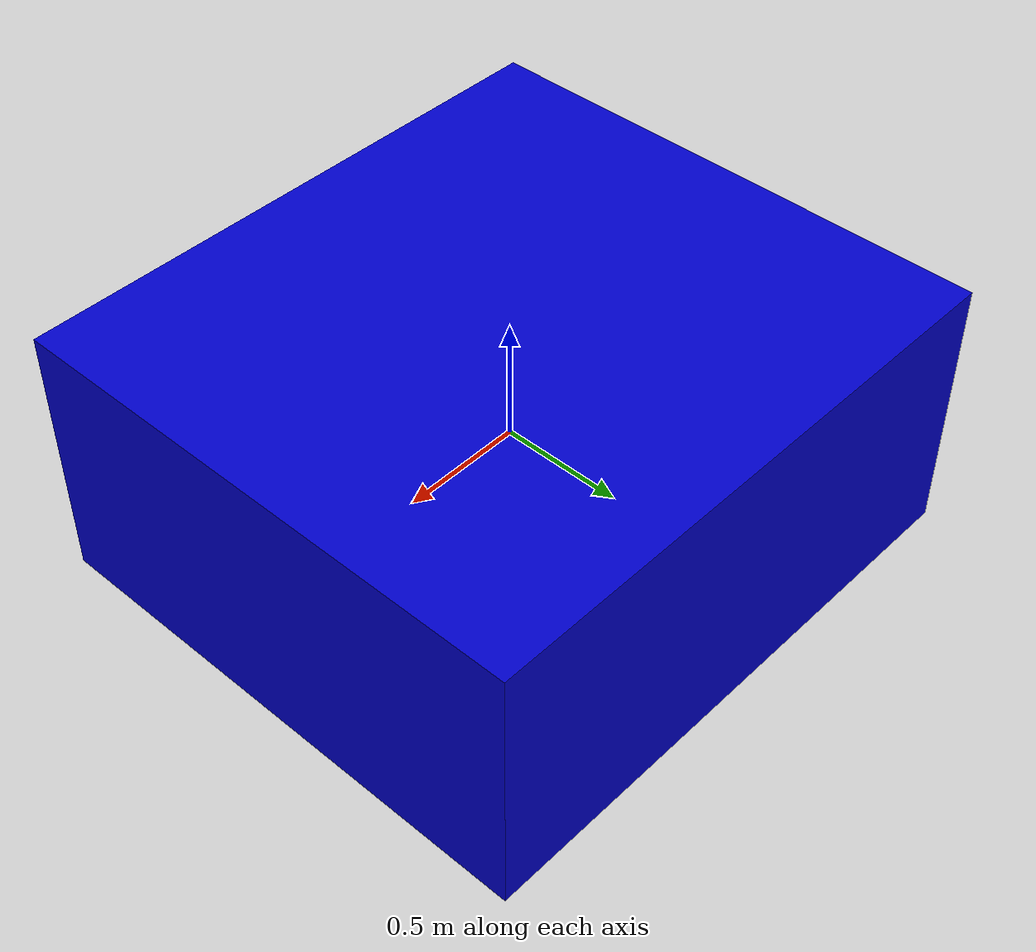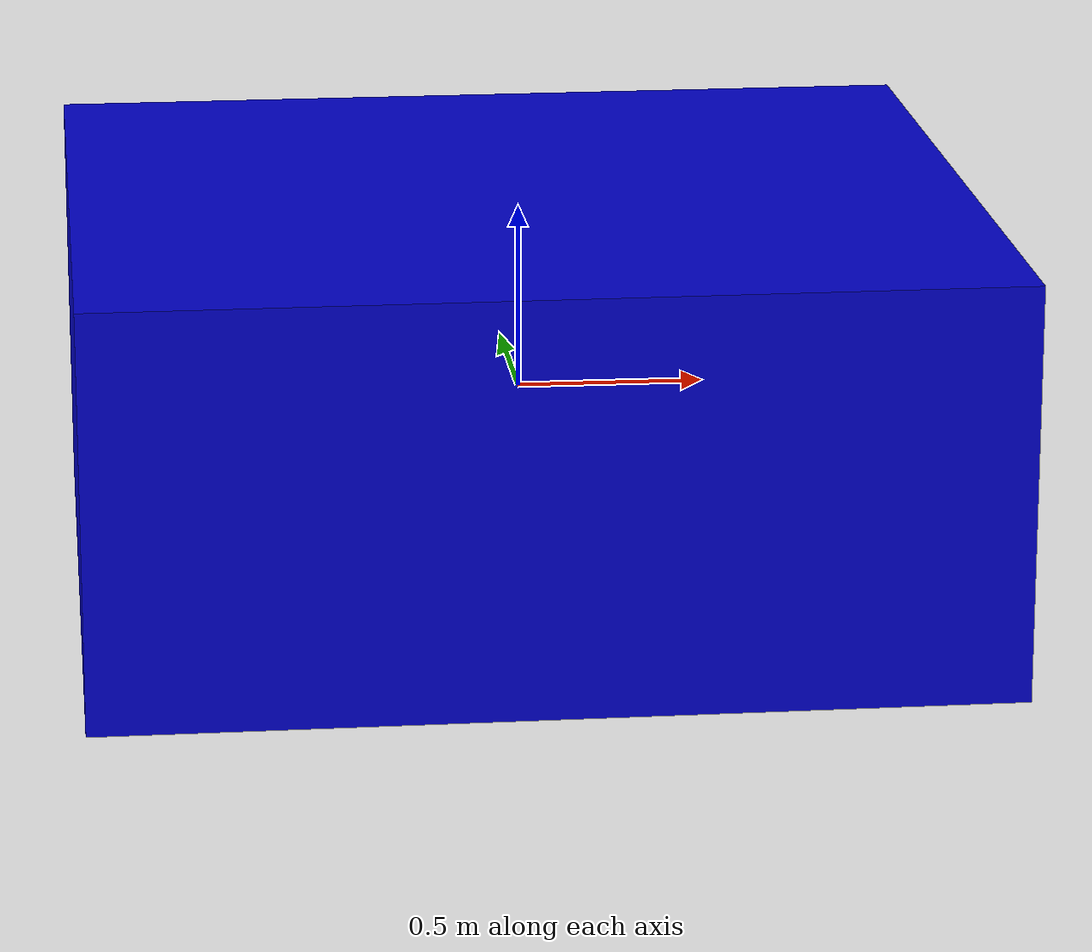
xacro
<?xml version="1.0"?>
<robot xmlns:xacro="http://www.ros.org/wiki/xacro" name="zaza">
  <xacro:property name='width' value='2.2' />
  <xacro:property name='length' value='2.4' />
  <xacro:property name='height' value='1.1' />

  <xacro:macro name="box_inertial" params="mass length width height">
  <inertial>
    <mass value="${mass}" />
    <inertia ixx="${mass*(height*height+width*width)/12}" ixy="0.0" ixz="0.0" iyy="${mass*(length*length+width*width)/12}" iyz="0.0" izz="${mass*(length*length+height*height)/12}" />
  </inertial>
  </xacro:macro>

  <material name="blue">
    <color rgba="0 0 0.8 1"/>
  </material>

  <link name="base">
    <visual>
      <geometry>
        <box size="${length} ${width} ${height}"/>
      </geometry>
      <material name="blue"/>
      <origin xyz="0 0 0"/>
    </visual>
    <collision>
      <origin xyz="0 0 0"/>
      <geometry>
        <box size="${length} ${width} ${height}"/>
      </geometry>
    </collision>
    <xacro:box_inertial mass="2" length="${length}" width="${width}" height="${height}"/>
  </link>

  <gazebo reference="base">
    <material>Gazebo/Orange</material>
  </gazebo>

</robot>
